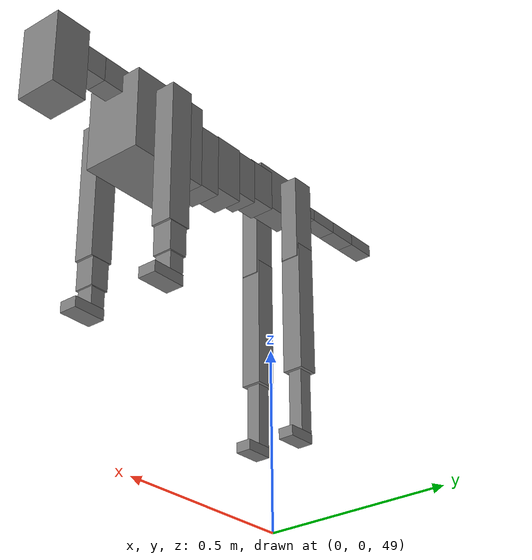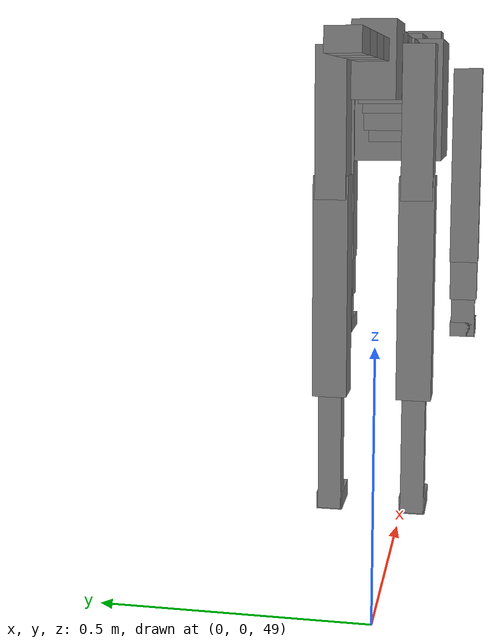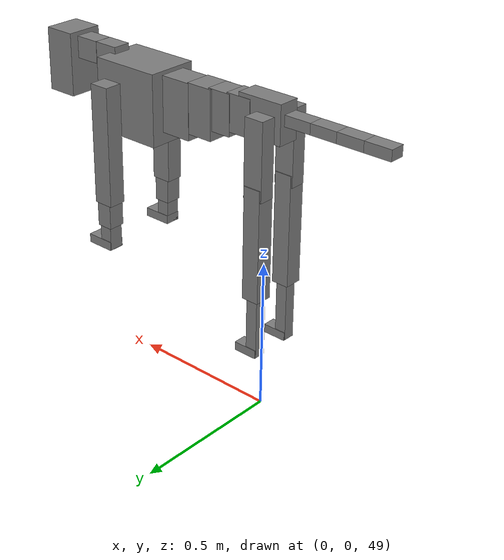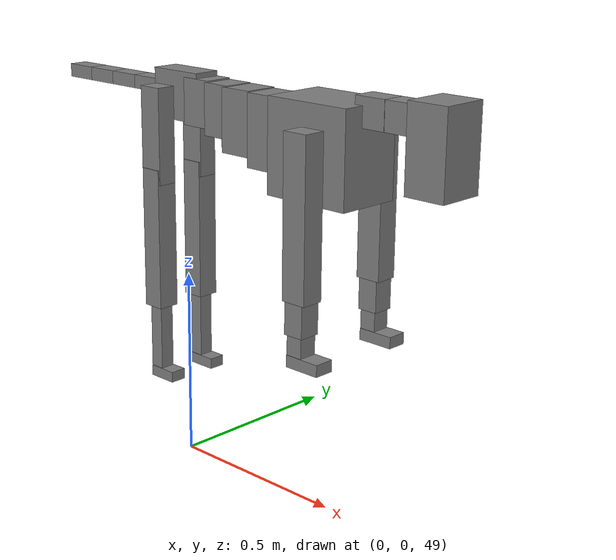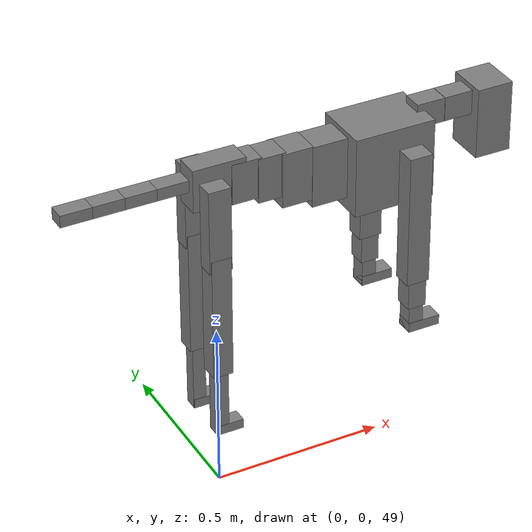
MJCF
<mujoco model="dog">

    <default>
        <joint armature="0.02" stiffness="1" damping="0.2" limited="true"/>
        <geom condim="3" friction="1 0.05 0.05" margin="0.01"/>
        <motor ctrllimited="true" ctrlrange="-1.0 1.0" forcelimited="true" gear="50"/>
    </default>

    <compiler inertiafromgeom="true" angle="radian"/>

    <option timestep="0.016" iterations="50" tolerance="1e-10" solver="Newton" jacobian="dense" cone="pyramidal"/>

    <size nconmax="20000" njmax="60000" nstack="5000000"/>
    <visual>
        <map force="0.1" zfar="30"/>
        <rgba haze="0.15 0.25 0.35 1"/>
        <quality shadowsize="2048"/>
        <global offwidth="800" offheight="800"/>
    </visual>

    <asset>
        <texture type="skybox" builtin="gradient" rgb1="0.3 0.5 0.7" rgb2="0 0 0" width="512" height="512"/>
        <texture name="texplane" type="2d" builtin="checker" rgb1=".2 .3 .4" rgb2=".1 0.15 0.2" width="512" height="512"
                 mark="cross" markrgb=".8 .8 .8"/>
        <texture name="texgeom" type="cube" builtin="flat" mark="cross" width="127" height="1278" rgb1="0.8 0.6 0.4"
                 rgb2="0.8 0.6 0.4" markrgb="1 1 1" random="0.01"/>

        <material name="matplane" reflectance="0.3" texture="texplane" texrepeat="1 1" texuniform="true"/>
        <material name="matgeom" texture="texgeom" texuniform="true" rgba="0.8 0.6 .4 1"/>
    </asset>

    <worldbody>
        <geom name="floor" pos="0 0 0" size="0 0 .25" type="plane" material="matplane" condim="3"/>

        <light directional="false" diffuse=".2 .2 .2" specular="0 0 0" pos="0 0 5" dir="0 0 -1" castshadow="false"/>
        <light mode="targetbodycom" target="torso" directional="false" diffuse=".8 .8 .8" specular="0.3 0.3 0.3"
               pos="0 0 4.0" dir="0 0 -1"/>

        <body name="root" pos="0 0 50">
            <freejoint name="root_1"/>
            <geom type="box" pos="0 0 -0.02" size="0.0774  0.0358  0.063" density="2030"/>

            <body name="spine1" pos="0.054 0 0">
                <joint name="spine1_y" axis="0 1 0" range="0 0.7" limited="true"/>
                <geom type="box" pos="0.02375 0 -0.03" size="0.04375  0.0375  0.05985" density="2030"/>

                <body name="spine2" pos="0.0612 0 0">
                    <joint name="spine2_y" axis="0 1 0" range="-0.15 0.15" limited="true"/>
                    <geom type="box" pos="0.03555  0  -0.04" size="0.04055  0.039  0.06615" density="2030"/>

                    <body name="spine3" pos="0.0730 0 0">
                        <joint name="spine3_y" axis="0 1 0" range="-0.15 0.15" limited="true"/>
                        <geom type="box" pos="0.03555  0  -0.057" size="0.04555  0.0445  0.081" density="2030"/>

                        <body name="spine4" pos="0.0780 0 0">
                            <joint name="spine4_y" axis="0 1 0" range="-0.15 0.15" limited="true"/>
                            <geom type="box" pos="0.05265  0  -0.07" size="0.05265  0.045  0.09135" density="2030"/>

                            <body name="torso" pos="0.1082 0 0">
                                <joint name="torso_y" axis="0 1 0" range="-0.15 0.15" limited="true"/>
                                <geom type="box" pos="0.11925  0  -0.085" size="0.11925  0.085  0.11745"
                                      density="2030"/>

                                <body name="neck1" pos="0.2160  0   0.0180">
                                    <joint name="neck1_y" axis="0 1 0" range="-1.2  -1" limited="true"/>
                                    <geom type="box" pos="0.0423  0  0" size="0.0423  0.03  0.036" density="2325"/>

                                    <body name="neck2" pos="0.0853  0  0">
                                        <joint name="neck2_y" axis="0 1 0" range="0.1  0" limited="true"/>
                                        <geom type="box" pos="0.0423  0  0" size="0.0423  0.03  0.036" density="2325"/>

                                        <body name="head" pos="0.0853  0  0">
                                            <joint name="head_y" axis="0 1 0" range="-0.3  -0.2" limited="true"/>
                                            <geom type="box" pos="0.0531  0  -0.055" size="0.0531  0.06  0.1044"
                                                  density="4030"/>

                                        </body>
                                    </body>
                                </body>

                                <body name="front_shoulder" pos="0.156  0   -0.0480">
                                    <joint name="front_shoulder_y" axis="0 1 0" range="-1 1.5" limited="true"/>
                                    <geom type="box" pos="0 0.13 -0.1711" size="0.0338  0.0289  0.1978" density="1158"/>
                                    <geom type="box" pos="0 -0.13 -0.1711" size="0.0338  0.0289  0.1978"
                                          density="1158"/>

                                    <body name="front_elbow" pos="0  0  -0.3422">
                                        <joint name="front_elbow_y" axis="0 1 0" range="-2 0" limited="true"/>
                                        <geom type="box" pos="0 0.13 -0.0534" size="0.0269  0.0275  0.0534"
                                              density="1081"/>
                                        <geom type="box" pos="0 -0.13 -0.0534" size="0.0269  0.0275  0.0534"
                                              density="1081"/>

                                        <body name="front_wrist" pos="0  0  -0.1068">
                                            <joint name="front_wrist_y" axis="0 1 0" range="-0.2 0" limited="true"/>
                                            <geom type="box" pos="0 0.13 -0.0323" size="0.0217  0.0241  0.0455"
                                                  density="1664"/>
                                            <geom type="box" pos="0 -0.13 -0.0323" size="0.0217  0.0241  0.0455"
                                                  density="1664"/>

                                            <body name="front_finger_end" pos="0  0  -0.0647">
                                                <joint name="front_finger_y" axis="0 1 0" range="-0.4 1"
                                                       limited="true"/>
                                                <geom type="box" pos="0.0259  0.13  0.0002"
                                                      size="0.0476  0.0259  0.0148" density="1515"/>
                                                <geom type="box" pos="0.0259  -0.13  0.0002"
                                                      size="0.0476  0.0259  0.0148" density="1515"/>

                                            </body>

                                        </body>
                                    </body>
                                </body>

                            </body>
                        </body>
                    </body>
                </body>
            </body>

            <body name="back_hip" pos="-0.03 0 -0.018">
                <joint name="back_hip_y" axis="0 1 0" range="-1.5 0.3" limited="true"/>
                <geom type="box" pos="0 0.07 -0.1015" size="0.0328  0.0257  0.1243" density="1154"/>
                <geom type="box" pos="0 -0.07 -0.1015" size="0.0328  0.0257  0.1243" density="1154"/>

                <body name="back_knee" pos="0  0  -0.2030">
                    <joint name="back_knee_y" axis="0 1 0" range="0 2.8" limited="true"/>
                    <geom type="box" pos="0 0.07 -0.1689" size="0.0292  0.0288  0.1845" density="1227"/>
                    <geom type="box" pos="0 -0.07 -0.1689" size="0.0292  0.0288  0.1845" density="1227"/>

                    <body name="back_ankle" pos="0  0  -0.3378">
                        <joint name="back_ankle_y" axis="0 1 0" range="-2.2 0" limited="true"/>
                        <geom type="box" pos="0 0.07 -0.1007" size="0.0194  0.0194  0.1120" density="1284"/>
                        <geom type="box" pos="0 -0.07 -0.1007" size="0.0194  0.0194  0.1120" density="1284"/>

                        <body name="back_toe_end" pos="0  0  -0.2015">
                            <joint name="back_toe_y" axis="0 1 0" range="-0.4 1" limited="true"/>
                            <geom type="box" pos="0.0216  0.07  0.0009" size="0.0397  0.0216  0.0141" density="1515"/>
                            <geom type="box" pos="0.0216  -0.07  0.0009" size="0.0397  0.0216  0.0141" density="1515"/>

                        </body>
                    </body>
                </body>
            </body>

            <body name="tail1" pos="-0.074 0 -0.006">
                <joint name="tail1_y" axis="0 1 0" range="-0.2 0.2" limited="true"/>
                <geom type="box" pos="-0.0536  0  0" size="0.045  0.025  0.0175" density="1587"/>

                <body name="tail2" pos="-0.09 0 0">
                    <joint name="tail2_y" axis="0 1 0" range="-0.2 0.2" limited="true"/>
                    <geom type="box" pos="-0.0536  0  0" size="0.045  0.025  0.0175" density="1587"/>

                    <body name="tail3" pos="-0.09 0 0">
                        <joint name="tail3_y" axis="0 1 0" range="-0.2 0.2" limited="true"/>
                        <geom type="box" pos="-0.0536  0  0" size="0.045  0.025  0.0175" density="1587"/>

                        <body name="tail4" pos="-0.09 0 0">
                            <joint name="tail4_y" axis="0 1 0" range="-0.2 0.2" limited="true"/>
                            <geom type="box" pos="-0.0536  0  0" size="0.045  0.025  0.0175" density="1587"/>

                        </body>
                    </body>
                </body>
            </body>
        </body>
    </worldbody>

    <actuator>
        <motor joint="spine1_y" forcerange="-150 150     "/>
        <motor joint="spine2_y" forcerange="-150 150     "/>
        <motor joint="spine3_y" forcerange="-150 150     "/>
        <motor joint="spine4_y" forcerange="-150 150     "/>
        <motor joint="torso_y" forcerange="-150 150     "/>
        <motor joint="neck1_y" forcerange="-100 100       "/>
        <motor joint="neck2_y" forcerange="-100 100       "/>
        <motor joint="head_y" forcerange="-150 150       "/>
        <motor joint="front_shoulder_y" forcerange="-158.06 134.57"/>
        <motor joint="front_elbow_y" forcerange="-149.43 150.87"/>
        <motor joint="front_wrist_y" forcerange="-79.46 113.61"/>
        <motor joint="front_finger_y" forcerange="-37.16 61.20"/>
        <motor joint="back_hip_y" forcerange="-266.82 275.93"/>
        <motor joint="back_knee_y" forcerange="-378.82 239.36"/>
        <motor joint="back_angle_y" forcerange="-78.31 132.06"/>
        <motor joint="back_toe_y" forcerange="-37.26 55.85"/>
        <motor joint="tail1_y" forcerange="-50 50     "/>
        <motor joint="tail2_y" forcerange="-50 50     "/>
        <motor joint="tail3_y" forcerange="-50 50     "/>
        <motor joint="tail4_y" forcerange="-50 50     "/>
    </actuator>
</mujoco>
